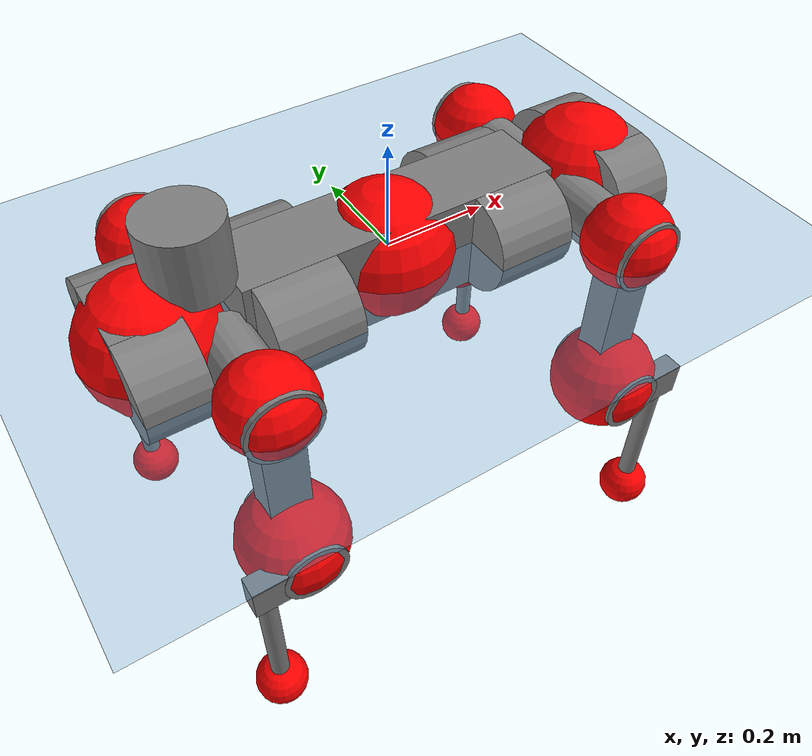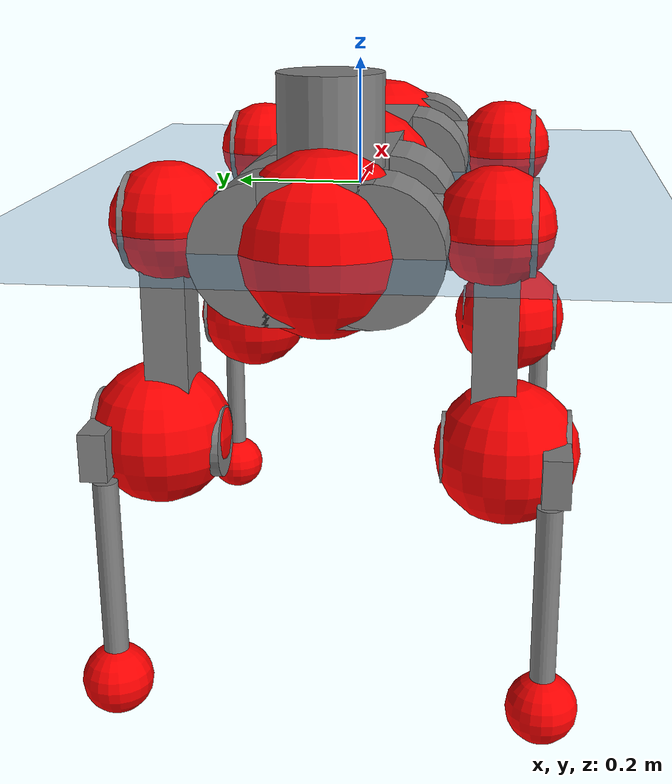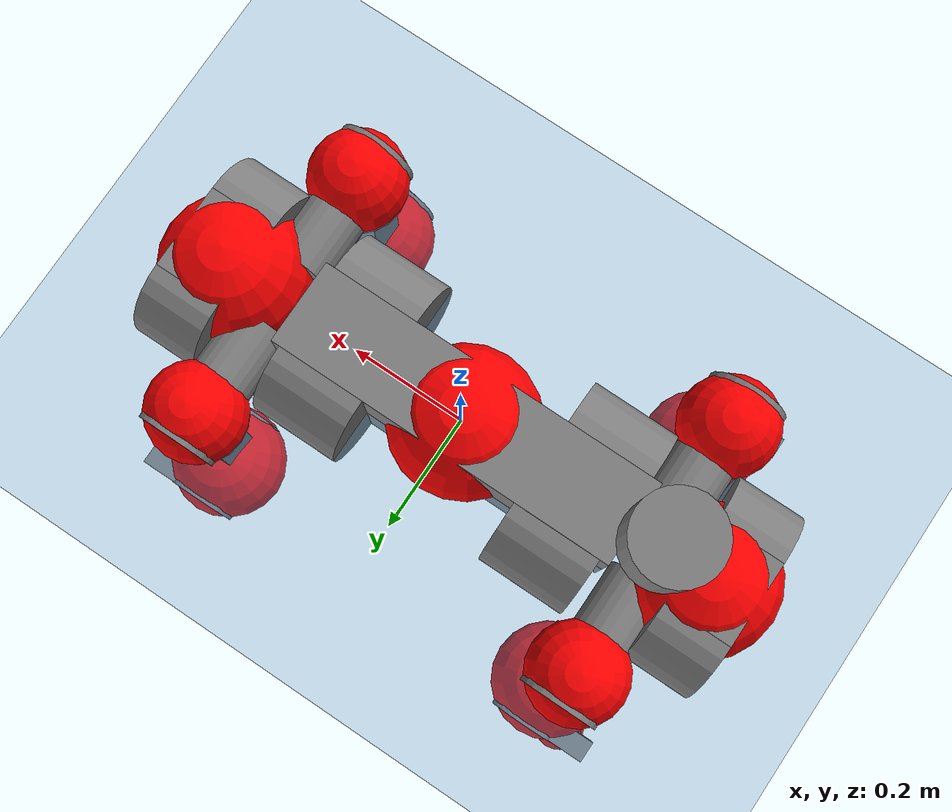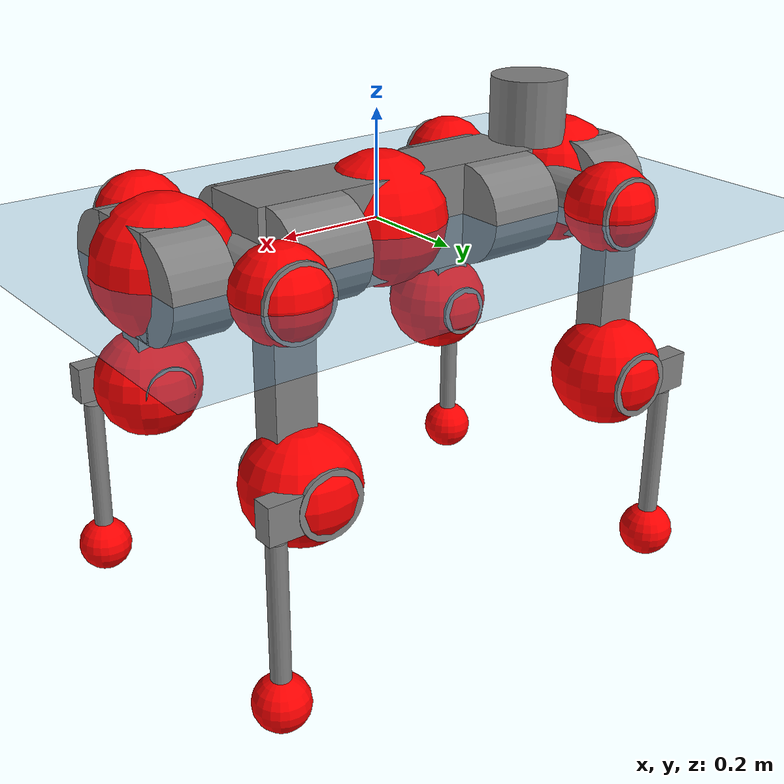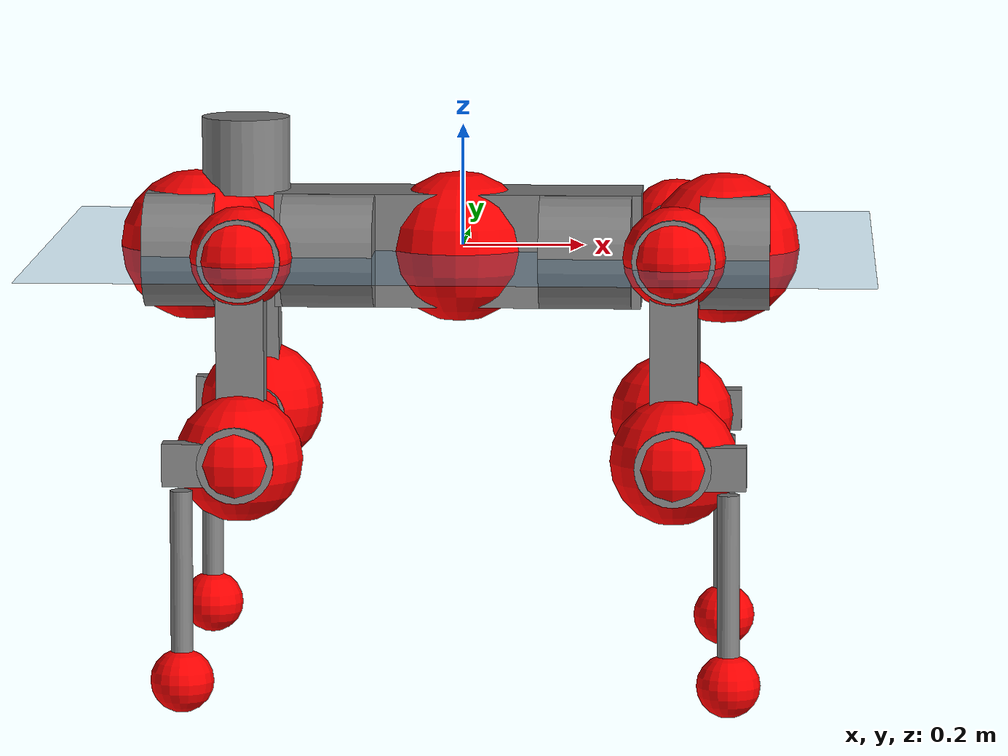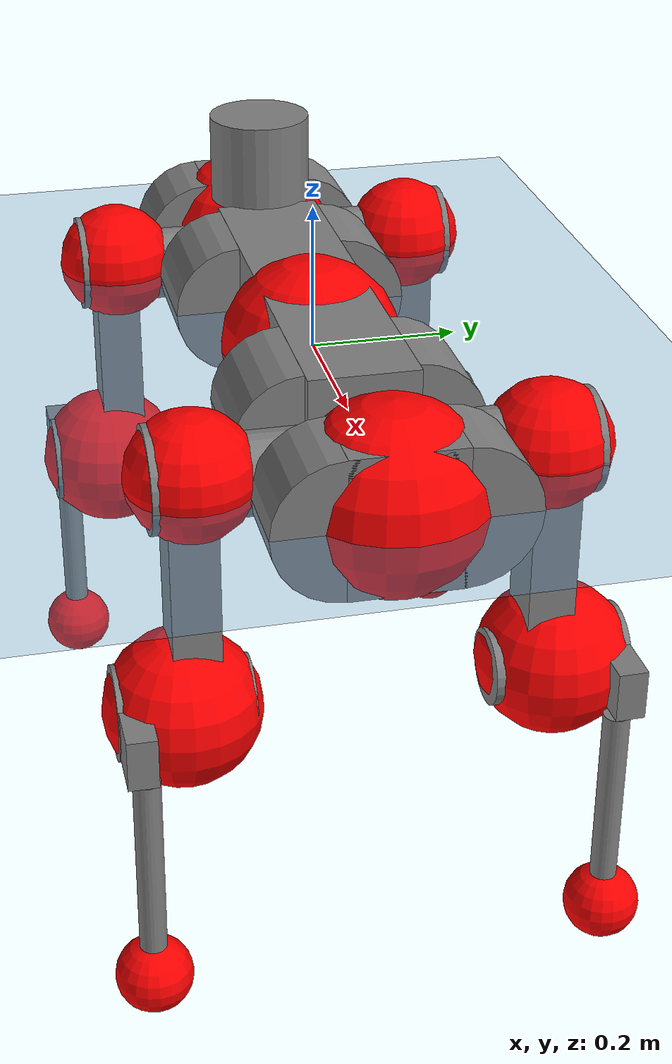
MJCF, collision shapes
<mujoco model="anymal_c">
  <compiler angle="radian" assetdir="assets" balanceinertia="true" inertiafromgeom="false"/>

  <option timestep="0.005" density="1.2" viscosity="2e-05"/>

  <size nkey="1"/>

  <visual>
    <quality shadowsize="8192"/>
    <map shadowclip="0.5"/>
  </visual>

  <default>
    <default class="/">
      <material specular="0" shininess="0.25"/>
      <geom contype="0" conaffinity="0" group="1" solref="-1000 -80"/>
      <site size="0.01 0.005 0.005" group="5"/>
      <general forcelimited="true" forcerange="-80 80" biastype="affine" gainprm="80" biasprm="0 -80 -2"/>
      <default class="anymal_c">
        <joint armature="0.01" damping="0.01" frictionloss="0.1"/>
        <default class="visual">
          <geom type="mesh" group="2"/>
          <default class="visual_zflip"/>
        </default>
        <default class="collision">
          <geom type="cylinder" group="3"/>
          <default class="foot">
            <geom size="0.03 0 0" type="sphere" condim="6" priority="1" friction="0.8 0.02 0.01" solimp="0.015 1 0.03"/>
          </default>
        </default>
      </default>
      <default class="reward_collision_sphere">
        <geom group="5" rgba="1 0 0 1"/>
      </default>
    </default>
  </default>

  <asset>
    <texture type="skybox" colorspace="auto" name="//unnamed_texture_0" builtin="gradient" rgb1="0.95 0.95 0.95" rgb2="0.95 0.95 0.95" width="100" height="600"/>
    <texture type="2d" colorspace="auto" name="texplane" builtin="checker" rgb1="0.345 0.575 0.748" rgb2="0.345 0.575 0.748" markrgb="1 1 1" width="512" height="512"/>
    <texture type="2d" colorspace="linear" name="base" file="base.png"/>
    <texture type="2d" colorspace="linear" name="top_shell" file="top_shell.png"/>
    <texture type="2d" colorspace="linear" name="bottom_shell" file="bottom_shell.png"/>
    <texture type="2d" colorspace="linear" name="remote" file="remote.png"/>
    <texture type="2d" colorspace="linear" name="hatch" file="hatch.png"/>
    <texture type="2d" colorspace="linear" name="handle" file="handle.png"/>
    <texture type="2d" colorspace="linear" name="face" file="face.png"/>
    <texture type="2d" colorspace="linear" name="battery" file="battery.png"/>
    <texture type="2d" colorspace="linear" name="lidar_cage" file="lidar_cage.png"/>
    <texture type="2d" colorspace="linear" name="depth_camera" file="depth_camera.png"/>
    <texture type="2d" colorspace="linear" name="wide_angle_camera" file="wide_angle_camera.png"/>
    <texture type="2d" colorspace="linear" name="lidar" file="lidar.png"/>
    <texture type="2d" colorspace="linear" name="drive" file="drive.png"/>
    <texture type="2d" colorspace="linear" name="hip_l" file="hip_l.png"/>
    <texture type="2d" colorspace="linear" name="shank_l" file="shank_l.png"/>
    <texture type="2d" colorspace="linear" name="foot" file="foot.png"/>
    <texture type="2d" colorspace="linear" name="thigh" file="thigh.png"/>
    <texture type="2d" colorspace="linear" name="shank_r" file="shank_r.png"/>
    <texture type="2d" colorspace="linear" name="hip_r" file="hip_r.png"/>
    <material name="MatPlane" class="/" texture="texplane" texuniform="true" texrepeat="2 2" specular="0.9" shininess="0.5"/>
    <material name="black_plastic" class="/" rgba="0.007 0.007 0.007 1"/>
    <material name="green" class="/" rgba="0.052 0.178 0.033 1"/>
    <material name="red" class="/" rgba="0.178 0.006 0.005 1"/>
    <material name="yellow" class="/" rgba="0.178 0.119 0.006 1"/>
    <material name="lwl" class="/" rgba="0.8 0.8 0.8 1"/>
    <material name="base" class="/" texture="base"/>
    <material name="top_shell" class="/" texture="top_shell"/>
    <material name="bottom_shell" class="/" texture="bottom_shell"/>
    <material name="hip_l" class="/" texture="hip_l"/>
    <material name="thigh" class="/" texture="thigh"/>
    <material name="shank_l" class="/" texture="shank_l"/>
    <material name="foot" class="/" texture="foot"/>
    <material name="hip_r" class="/" texture="hip_r"/>
    <material name="shank" class="/" texture="shank_r"/>
    <material name="hatch" class="/" texture="hatch"/>
    <material name="remote" class="/" texture="remote"/>
    <material name="handle" class="/" texture="handle"/>
    <material name="face" class="/" texture="face"/>
    <material name="depth_camera" class="/" texture="depth_camera"/>
    <material name="wide_angle_camera" class="/" texture="wide_angle_camera"/>
    <material name="battery" class="/" texture="battery"/>
    <material name="lidar_cage" class="/" texture="lidar_cage"/>
    <material name="lidar" class="/" texture="lidar"/>
    <material name="drive" class="/" texture="drive"/>
    <mesh name="base_0" class="/" file="base_0.obj"/>
    <mesh name="base_1" class="/" file="base_1.obj"/>
    <mesh name="base_2" class="/" file="base_2.obj"/>
    <mesh name="base_3" class="/" file="base_3.obj"/>
    <mesh name="base_4" class="/" file="base_4.obj"/>
    <mesh name="base_5" class="/" file="base_5.obj"/>
    <mesh name="top_shell" class="/" file="top_shell.obj"/>
    <mesh name="bottom_shell" class="/" file="bottom_shell.obj"/>
    <mesh name="remote" class="/" file="remote.obj"/>
    <mesh name="handle" class="/" file="handle.obj"/>
    <mesh name="face" class="/" file="face.obj"/>
    <mesh name="wide_angle_camera" class="/" file="wide_angle_camera.obj"/>
    <mesh name="depth_camera" class="/" file="depth_camera.obj"/>
    <mesh name="battery" class="/" file="battery.obj"/>
    <mesh name="lidar_cage" class="/" file="lidar_cage.obj"/>
    <mesh name="lidar" class="/" file="lidar.obj"/>
    <mesh name="drive" class="/" file="drive.obj"/>
    <mesh name="hip_l" class="/" file="hip_l.obj"/>
    <mesh name="thigh" class="/" file="thigh.obj"/>
    <mesh name="shank_l" class="/" file="shank_l.obj"/>
    <mesh name="foot" class="/" file="foot.obj"/>
    <mesh name="hip_r" class="/" file="hip_r.obj"/>
    <mesh name="hatch" class="/" file="hatch.obj"/>
    <mesh name="shank_r" class="/" file="shank_r.obj"/>
  </asset>

  <worldbody>
    <geom name="floor" class="/" size="100 100 0.125" type="plane" group="0" material="MatPlane"/>
    <light name="toplight_shadow" class="/" pos="0 0 5" dir="0.0990148 0.0990148 -0.990148" type="directional" ambient="0.04 0.04 0.04" diffuse="0.55 0.55 0.55" specular="0.12 0.12 0.12"/>
    <light name="toplight_fill" class="/" pos="0 0 5" dir="0.0990148 0.0990148 -0.990148" type="directional" castshadow="false" ambient="0.04 0.04 0.04" diffuse="0.3 0.3 0.3" specular="0.08 0.08 0.08"/>
    <body name="trunk" childclass="anymal_c" pos="-0.00688084 -0.000594273 -0.00201311" quat="1 -0.000385289 -0.00017968 -0.000287052">
      <inertial pos="0.00209856 -0.00288555 0.0553388" quat="0.508978 0.497066 0.494271 0.499563" mass="22.1934" diaginertia="0.471087 0.610712 0.404113"/>
      <joint name="//unnamed_joint_0" type="free" armature="0" damping="0" frictionloss="0"/>
      <geom name="//unnamed_geom_1" class="visual" material="green" mesh="base_0"/>
      <geom name="//unnamed_geom_2" class="visual" material="yellow" mesh="base_1"/>
      <geom name="//unnamed_geom_3" class="visual" material="red" mesh="base_2"/>
      <geom name="//unnamed_geom_4" class="visual" material="black_plastic" mesh="base_3"/>
      <geom name="//unnamed_geom_5" class="visual" material="lwl" mesh="base_4"/>
      <geom name="//unnamed_geom_6" class="visual" material="base" mesh="base_5"/>
      <geom name="trunk_1" class="collision" size="0.302407 0.0729949 0.0938506" type="box"/>
      <geom name="trunk_2" class="collision" size="0.0938506 0.0756018" pos="0.211561 0.071373 0" quat="0.707107 0 0.707107 0"/>
      <geom name="trunk_3" class="collision" size="0.0938506 0.0756018" pos="-0.211561 0.071373 0" quat="0.707107 0 0.707107 0"/>
      <geom name="trunk_4" class="collision" size="0.0938506 0.0756018" pos="0.211561 -0.071373 0" quat="0.707107 0 0.707107 0"/>
      <geom name="trunk_5" class="collision" size="0.0938506 0.0756018" pos="-0.211561 -0.071373 0" quat="0.707107 0 0.707107 0"/>
      <geom name="//unnamed_geom_12" class="visual" material="top_shell" mesh="top_shell"/>
      <geom name="//unnamed_geom_13" class="visual" material="bottom_shell" mesh="bottom_shell"/>
      <geom name="//unnamed_geom_14" class="visual" material="remote" mesh="remote"/>
      <geom name="//unnamed_geom_15" class="visual" material="handle" mesh="handle"/>
      <geom name="//unnamed_geom_16" class="visual" pos="0.403183 0 0" quat="1 0 0 0" material="face" mesh="face"/>
      <geom name="trunk_6" class="collision" size="0.0573531 0.0729949 0.0938506" pos="0.456681 0 0" type="box"/>
      <geom name="//unnamed_geom_18" class="collision" size="0.0938506 0.0573531" pos="0.456681 0.071373 0" quat="0.707107 0 0.707107 0"/>
      <geom name="//unnamed_geom_19" class="collision" size="0.0938506 0.0573531" pos="0.456681 -0.071373 0" quat="0.707107 0 0.707107 0"/>
      <geom name="//unnamed_geom_20" class="visual" pos="0.449052 0 -0.0344138" quat="0.965926 0 0.258819 0" material="depth_camera" mesh="depth_camera"/>
      <geom name="//unnamed_geom_21" class="visual" pos="0.498993 0 0.0170065" material="wide_angle_camera" mesh="wide_angle_camera"/>
      <geom name="//unnamed_geom_22" class="visual_zflip" pos="-0.403183 0 0" quat="0 0 0 1" material="face" mesh="face"/>
      <geom name="trunk_7" class="collision" size="0.0573531 0.0729949 0.0938506" pos="-0.456681 0 0" quat="0 0 0 1" type="box"/>
      <geom name="//unnamed_geom_24" class="collision" size="0.0938506 0.0573531" pos="-0.456681 -0.071373 0" quat="0 -0.707107 0 0.707107"/>
      <geom name="//unnamed_geom_25" class="collision" size="0.0938506 0.0573531" pos="-0.456681 0.071373 0" quat="0 -0.707107 0 0.707107"/>
      <geom name="//unnamed_geom_26" class="visual" pos="-0.449052 0 -0.0344138" quat="0 -0.258819 0 0.965926" material="depth_camera" mesh="depth_camera"/>
      <geom name="//unnamed_geom_27" class="visual_zflip" pos="-0.498993 0 0.0170065" quat="0 0 0 1" material="wide_angle_camera" mesh="wide_angle_camera"/>
      <geom name="//unnamed_geom_28" class="visual" material="battery" mesh="battery"/>
      <geom name="//unnamed_geom_29" class="visual" pos="0 0.0785821 0.0317606" quat="0.683013 -0.183013 0.183013 0.683013" material="depth_camera" mesh="depth_camera"/>
      <geom name="//unnamed_geom_30" class="visual" pos="0 -0.0785821 0.0317606" quat="0.683013 0.183013 0.183013 -0.683013" material="depth_camera" mesh="depth_camera"/>
      <geom name="//unnamed_geom_31" class="visual" pos="-0.354061 0 0.0834991" quat="1 0 0 0" material="lidar_cage" mesh="lidar_cage"/>
      <geom name="trunk_8" class="collision" size="0.0729949 0.062567" pos="-0.354061 0 0.151662"/>
      <geom name="//unnamed_geom_33" class="visual" pos="-0.354061 1.84328e-05 0.161545" quat="0.707107 0 0 -0.707107" material="lidar" mesh="lidar"/>
      <geom name="//unnamed_geom_34" class="visual" pos="0.291712 0.106081 -2.00839e-09" quat="0.258819 0.965926 0 0" material="drive" mesh="drive"/>
      <geom name="//unnamed_geom_35" class="visual" pos="0.291712 -0.106081 2.00839e-09" quat="0.258819 -0.965926 0 0" material="drive" mesh="drive"/>
      <geom name="//unnamed_geom_36" class="visual" pos="-0.291712 0.106081 2.00839e-09" quat="0 0 0.965926 -0.258819" material="drive" mesh="drive"/>
      <geom name="//unnamed_geom_37" class="visual" pos="-0.291712 -0.106081 -2.00839e-09" quat="0 0 -0.965926 -0.258819" material="drive" mesh="drive"/>
      <geom name="//unnamed_geom_38" class="visual" pos="0.112833 0 0.082931" quat="1 0 0 0" material="hatch" mesh="hatch"/>
      <geom name="//unnamed_geom_39" class="reward_collision_sphere" size="0.125134"/>
      <geom name="//unnamed_geom_40" class="reward_collision_sphere" size="0.125134" pos="0.437713 0 0"/>
      <geom name="//unnamed_geom_41" class="reward_collision_sphere" size="0.125134" pos="-0.437713 0 0"/>
      <site name="imu" pos="0.245484 -0.000951334 0.0943451" size="0.0104278"/>
      <camera name="track" pos="0 -2.03923 0" quat="0.707107 0.707107 0 0" mode="trackcom"/>
      <camera name="ego_camera" pos="0.437713 0 -0.0454417" quat="-0.5 -0.5 0.5 0.5"/>
      <body name="LF_HIP" pos="0.294837 0.1086 0.00239184" quat="0.256136 0.96664 -0.000361961 0.00117223">
        <inertial pos="0.0629088 -0.0147594 -0.00992134" quat="-0.129123 0.710088 -0.135276 0.678824" mass="3.03524" diaginertia="0.00490461 0.00559365 0.00594164"/>
        <joint name="LF_HAA" pos="0 0 0" axis="0.99883 0.0144484 0.046154" stiffness="0.0343898" range="-0.761507 0.495985" armature="0.0145922" damping="0.0181201" frictionloss="0.0954076"/>
        <geom name="//unnamed_geom_42" class="visual" pos="0 -0.000118144 1.94051e-05" quat="0.258819 -0.965926 0 0" material="hip_l" mesh="hip_l"/>
        <geom name="//unnamed_geom_43" class="visual" pos="0.0582645 -0.071259 -0.0420025" quat="0.183013 -0.683013 0.683013 0.183013" material="drive" mesh="drive"/>
        <geom name="//unnamed_geom_44" class="collision" size="0.0521392 0.0729949" pos="0.0582645 -0.0121944 -0.00784437" quat="-0.353553 -0.612372 0.612372 -0.353553"/>
        <body name="LF_THIGH" pos="0.061696 -0.0759387 -0.0448318" quat="0.182602 -0.682987 0.683035 0.183434">
          <inertial pos="0.0285265 -0.000276723 -0.270254" quat="0.993492 -0.00428525 -0.0834686 0.0773819" mass="3.56378" diaginertia="0.0268564 0.0328343 0.00777125"/>
          <joint name="LF_HFE" pos="0 0 0" axis="0.999951 -0.00992117 -9.9597e-05" stiffness="0.0156939" range="-3.16079 3.13308" armature="0.00711225" damping="0.0198874" frictionloss="0.118186"/>
          <geom name="//unnamed_geom_45" class="visual" pos="-0.000933481 -1.47095e-06 0" quat="0.707107 0 0 -0.707107" material="thigh" mesh="thigh"/>
          <geom name="//unnamed_geom_46" class="collision" size="0.067781 0.0417114" pos="0.0389079 0 0" quat="0.5 0.5 -0.5 -0.5"/>
          <geom name="//unnamed_geom_47" class="collision" size="0.0391044 0.0312835 0.14736" pos="0.0291809 0 -0.160539" quat="0.707107 0 0 -0.707107" type="box"/>
          <geom name="//unnamed_geom_48" class="visual" pos="0.0975614 0 -0.323772" quat="1 0 0 0" material="drive" mesh="drive"/>
          <geom name="//unnamed_geom_49" class="collision" size="0.0521392 0.0729949" pos="0.0294727 0 -0.323772" quat="0.707107 0 0.707107 0"/>
          <geom name="//unnamed_geom_50" class="reward_collision_sphere" size="0.0834227" pos="0.0243174 0 0"/>
          <body name="LF_SHANK" pos="0.0998458 0.00915727 -0.324728" quat="0.999998 0.000258331 0.000238881 0.00214479">
            <inertial pos="0.00374416 -0.0635504 -0.0913659" quat="0.989015 -0.144946 -0.024364 -0.0156795" mass="0.617962" diaginertia="0.00903854 0.00982357 0.00219253"/>
            <joint name="LF_KFE" pos="0 0 0" axis="1 -0.00020546 0.000455888" stiffness="0.00252609" range="-3.12713 3.10346" armature="0.010498" damping="0.0282608" frictionloss="0.114854"/>
            <geom name="//unnamed_geom_51" class="visual" pos="-0.000304388 -0.00162301 0" quat="0.707107 0 0 -0.707107" material="shank_l" mesh="shank_l"/>
            <geom name="LF_kfe_act" class="collision" size="0.062567 0.0208557" pos="0.0194539 0 0" quat="0.5 0.5 -0.5 -0.5"/>
            <geom name="//unnamed_geom_53" class="collision" size="0.059959 0.035194 0.0198129" pos="0.0194539 -0.0586268 0" quat="0.5 0.5 -0.5 -0.5" type="box"/>
            <geom name="//unnamed_geom_54" class="visual" pos="0.0126938 -0.0901981 -0.383948" quat="0.382683 0 0 -0.92388" material="foot" mesh="foot"/>
            <geom name="LF_calf" class="collision" size="0.0182487 0.147295" pos="0.0126937 -0.0896751 -0.191974" quat="0.707107 0 0 -0.707107"/>
            <geom name="LF_foot" class="foot" size="0.0266907" pos="0.0126937 -0.0896751 -0.358387" quat="0.707107 0 0 -0.707107"/>
            <geom name="//unnamed_geom_57" class="reward_collision_sphere" size="0.104278" pos="-0.0486348 0 0"/>
            <geom name="//unnamed_geom_58" class="reward_collision_sphere" size="0.0521392" pos="0.0126937 -0.0896751 -0.358387"/>
            <site name="LF_foot" class="foot" pos="0.0126937 -0.0896751 -0.358387" quat="0.707107 0 0 -0.707107" size="0.0104278"/>
          </body>
        </body>
      </body>
      <body name="RF_HIP" pos="0.300696 -0.114714 0.00562502" quat="0.25896 -0.965887 0.000594154 -0.00137998">
        <inertial pos="0.0466099 0.0164866 -0.00202216" quat="0.146082 0.670585 0.124702 0.716537" mass="2.90002" diaginertia="0.00447444 0.00509622 0.00562781"/>
        <joint name="RF_HAA" pos="0 0 0" axis="0.999452 -0.00846007 -0.0320153" range="-0.338012 0.760551" armature="0.010578" damping="0.0207775" frictionloss="0.135348"/>
        <geom name="//unnamed_geom_59" class="visual" pos="0 0.000118143 1.94051e-05" quat="0.258819 0.965926 0 0" material="hip_r" mesh="hip_r"/>
        <geom name="//unnamed_geom_60" class="visual" pos="0.0582645 0.071259 -0.0420025" quat="0.183013 0.683013 0.683013 -0.183013" material="drive" mesh="drive"/>
        <geom name="//unnamed_geom_61" class="collision" size="0.0521392 0.0729949" pos="0.0582645 0.0121944 -0.00784437" quat="-0.353553 0.612372 0.612372 0.353553"/>
        <body name="RF_THIGH" pos="0.0592095 0.0739449 -0.0504717" quat="0.183017 0.683015 0.683004 -0.183034">
          <inertial pos="0.0319653 -0.00970577 -0.278378" quat="0.993117 -0.0049681 -0.0784195 0.0868575" mass="3.4752" diaginertia="0.026022 0.0336883 0.00792885"/>
          <joint name="RF_HFE" pos="0 0 0" axis="0.999834 0.0165695 0.00758352" range="-3.18211 3.10307" armature="0.010081" damping="0.0307412" frictionloss="0.112053"/>
          <geom name="//unnamed_geom_62" class="visual" pos="-0.000933481 -1.47095e-06 0" quat="0.707107 0 0 -0.707107" material="thigh" mesh="thigh"/>
          <geom name="//unnamed_geom_63" class="collision" size="0.067781 0.0417114" pos="0.0389079 0 0" quat="0.5 0.5 0.5 0.5"/>
          <geom name="//unnamed_geom_64" class="collision" size="0.0391044 0.0312835 0.14736" pos="0.0291809 0 -0.160539" quat="0.707107 0 0 0.707107" type="box"/>
          <geom name="//unnamed_geom_65" class="visual" pos="0.0975614 0 -0.323772" quat="1 0 0 0" material="drive" mesh="drive"/>
          <geom name="//unnamed_geom_66" class="collision" size="0.0521392 0.0729949" pos="0.0294727 0 -0.323772" quat="0.707107 0 0.707107 0"/>
          <geom name="//unnamed_geom_67" class="reward_collision_sphere" size="0.0834227" pos="0.0243174 0 0"/>
          <body name="RF_SHANK" pos="0.0938007 0.000686372 -0.32994" quat="0.99999 0.00132123 -0.00400711 -0.00109852">
            <inertial pos="-0.0045477 0.0660252 -0.0975571" quat="0.992369 0.118875 0.000204669 0.0327372" mass="0.70113" diaginertia="0.00843888 0.00916561 0.00184421"/>
            <joint name="RF_KFE" pos="0 0 0" axis="0.999999 -0.00112404 0.000483295" range="-2.98221 3.09755" armature="0.011502" damping="0" frictionloss="0.0695741"/>
            <geom name="//unnamed_geom_68" class="visual" pos="-0.000304386 0.00162301 0" quat="0.707107 0 0 0.707107" material="shank" mesh="shank_r"/>
            <geom name="RF_kfe_act" class="collision" size="0.062567 0.0208557" pos="0.0194539 0 0" quat="0.5 0.5 0.5 0.5"/>
            <geom name="//unnamed_geom_70" class="collision" size="0.059959 0.035194 0.0198129" pos="0.0194539 0.0586268 0" quat="0.5 0.5 0.5 0.5" type="box"/>
            <geom name="//unnamed_geom_71" class="visual" pos="0.0126936 0.0901981 -0.383948" quat="0.382683 0 0 0.92388" material="foot" mesh="foot"/>
            <geom name="RF_calf" class="collision" size="0.0182487 0.147295" pos="0.0126937 0.0896751 -0.191974" quat="0.707107 0 0 0.707107"/>
            <geom name="RF_foot" class="foot" size="0.0303817" pos="0.0126937 0.0896751 -0.358387" quat="0.707107 0 0 0.707107"/>
            <geom name="//unnamed_geom_74" class="reward_collision_sphere" size="0.104278" pos="-0.0486348 0 0"/>
            <geom name="//unnamed_geom_75" class="reward_collision_sphere" size="0.0521392" pos="0.0126937 0.0896751 -0.358387"/>
            <site name="RF_foot" class="foot" pos="0.0126937 0.0896751 -0.358387" quat="0.707107 0 0 0.707107" size="0.0104278"/>
          </body>
        </body>
      </body>
      <body name="LH_HIP" pos="-0.301761 0.112678 0.00156341" quat="-1.35787e-05 4.03159e-05 0.965927 -0.258816">
        <inertial pos="0.047215 0.0251195 -0.00949146" quat="0.147249 0.67873 0.0980618 0.71276" mass="3.20853" diaginertia="0.00503651 0.00536608 0.006692"/>
        <joint name="LH_HAA" pos="0 0 0" axis="0.999983 -0.00062462 0.0058105" range="-0.572124 0.710133" armature="0.0106425" damping="0.00513773" frictionloss="0.104762"/>
        <geom name="//unnamed_geom_76" class="visual" pos="0 0.000118143 1.94051e-05" quat="-0.258819 -0.965926 0 0" material="hip_r" mesh="hip_r"/>
        <geom name="//unnamed_geom_77" class="visual" pos="0.0582645 0.071259 -0.0420025" quat="0.183013 0.683013 0.683013 -0.183013" material="drive" mesh="drive"/>
        <geom name="//unnamed_geom_78" class="collision" size="0.0521392 0.0729949" pos="0.0582645 0.0121944 -0.00784437" quat="-0.353553 0.612372 0.612372 0.353553"/>
        <body name="LH_THIGH" pos="0.0556623 0.0730116 -0.0509482" quat="0.183037 0.683081 0.682931 -0.183037">
          <inertial pos="0.0312939 -0.00829697 -0.276903" quat="0.994597 -0.00812569 -0.0555919 0.0872947" mass="3.34297" diaginertia="0.0260856 0.0318838 0.00834157"/>
          <joint name="LH_HFE" pos="0 0 0" axis="0.99933 -0.00797983 0.0357183" stiffness="0.021941" range="-3.22152 3.07309" armature="0.00652429" damping="0.00838681" frictionloss="0.0727487"/>
          <geom name="//unnamed_geom_79" class="visual" pos="-0.000933481 -1.47095e-06 0" quat="0.707107 0 0 -0.707107" material="thigh" mesh="thigh"/>
          <geom name="//unnamed_geom_80" class="collision" size="0.067781 0.0417114" pos="0.0389079 0 0" quat="0.5 0.5 -0.5 -0.5"/>
          <geom name="//unnamed_geom_81" class="collision" size="0.0391044 0.0312835 0.14736" pos="0.0291809 0 -0.160539" quat="0.707107 0 0 -0.707107" type="box"/>
          <geom name="//unnamed_geom_82" class="visual" pos="0.0975614 0 -0.323772" quat="1 0 0 0" material="drive" mesh="drive"/>
          <geom name="//unnamed_geom_83" class="collision" size="0.0521392 0.0729949" pos="0.0294727 0 -0.323772" quat="0.707107 0 0.707107 0"/>
          <geom name="//unnamed_geom_84" class="reward_collision_sphere" size="0.0834227" pos="0.0243174 0 0"/>
          <body name="LH_SHANK" pos="0.100828 -0.00598317 -0.314549" quat="0.999989 0.00273525 0.00340746 0.00138907">
            <inertial pos="0.00737281 0.0620033 -0.101605" quat="0.992036 0.123262 0.0078388 0.0247012" mass="0.732161" diaginertia="0.00873541 0.0104079 0.00217037"/>
            <joint name="LH_KFE" pos="0 0 0" axis="0.999994 -0.00217293 0.00268427" stiffness="0.0063683" range="-3.12268 3.20783" armature="0.0109288" damping="0.0145627" frictionloss="0.131368"/>
            <geom name="//unnamed_geom_85" class="visual" pos="-0.000304386 0.00162301 0" quat="-0.707107 0 0 -0.707107" material="shank" mesh="shank_r"/>
            <geom name="LH_kfe_act" class="collision" size="0.062567 0.0208557" pos="0.0194539 0 0" quat="0.5 0.5 -0.5 -0.5"/>
            <geom name="//unnamed_geom_87" class="collision" size="0.059959 0.035194 0.0198129" pos="0.0194539 0.0586268 0" quat="0.5 0.5 -0.5 -0.5" type="box"/>
            <geom name="//unnamed_geom_88" class="visual" pos="0.0126936 0.0901981 -0.383948" quat="-0.382683 0 0 -0.92388" material="foot" mesh="foot"/>
            <geom name="LH_calf" class="collision" size="0.0182487 0.147295" pos="0.0126937 0.0896751 -0.191974" quat="0.707107 0 0 -0.707107"/>
            <geom name="LH_foot" class="foot" size="0.0378173" pos="0.0126937 0.0896751 -0.358387" quat="0.707107 0 0 -0.707107"/>
            <geom name="//unnamed_geom_91" class="reward_collision_sphere" size="0.104278" pos="-0.0486348 0 0"/>
            <geom name="//unnamed_geom_92" class="reward_collision_sphere" size="0.0521392" pos="0.0126937 0.0896751 -0.358387"/>
            <site name="LH_foot" class="foot" pos="0.0126937 0.0896751 -0.358387" quat="0.707107 0 0 -0.707107" size="0.0104278"/>
          </body>
        </body>
      </body>
      <body name="RH_HIP" pos="-0.283646 -0.106872 -0.00165705" quat="0.000120717 8.86477e-05 -0.965898 -0.258924">
        <inertial pos="0.0506023 -0.0177946 -0.0100098" quat="-0.167608 0.70178 -0.129174 0.68024" mass="3.07434" diaginertia="0.00483054 0.00507341 0.00585533"/>
        <joint name="RH_HAA" pos="0 0 0" axis="0.999079 0.040988 -0.012702" range="-0.737727 0.493801" armature="0.0107334" damping="0.000669581" frictionloss="0.111329"/>
        <geom name="//unnamed_geom_93" class="visual" pos="0 -0.000118144 1.94051e-05" quat="-0.258819 0.965926 0 0" material="hip_l" mesh="hip_l"/>
        <geom name="//unnamed_geom_94" class="visual" pos="0.0582645 -0.071259 -0.0420025" quat="-0.183013 0.683013 -0.683013 -0.183013" material="drive" mesh="drive"/>
        <geom name="//unnamed_geom_95" class="collision" size="0.0521392 0.0729949" pos="0.0582645 -0.0121944 -0.00784437" quat="0.353553 0.612372 -0.612372 0.353553"/>
        <body name="RH_THIGH" pos="0.0606011 -0.074556 -0.0545055" quat="-0.183053 0.683065 -0.682979 -0.182903">
          <inertial pos="0.0309895 -0.00231333 -0.278694" quat="0.994031 -0.0475052 -0.063473 0.0749459" mass="3.47604" diaginertia="0.026034 0.0308667 0.00705798"/>
          <joint name="RH_HFE" pos="0 0 0" axis="0.99999 0.0025076 0.00358985" stiffness="0.0218754" range="-3.11927 3.13762" armature="0.00759386" damping="0.0399679" frictionloss="0.113799"/>
          <geom name="//unnamed_geom_96" class="visual" pos="-0.000933481 -1.47095e-06 0" quat="0.707107 0 0 -0.707107" material="thigh" mesh="thigh"/>
          <geom name="//unnamed_geom_97" class="collision" size="0.067781 0.0417114" pos="0.0389079 0 0" quat="0.5 0.5 0.5 0.5"/>
          <geom name="//unnamed_geom_98" class="collision" size="0.0391044 0.0312835 0.14736" pos="0.0291809 0 -0.160539" quat="0.707107 0 0 0.707107" type="box"/>
          <geom name="//unnamed_geom_99" class="visual" pos="0.0975614 0 -0.323772" quat="1 0 0 0" material="drive" mesh="drive"/>
          <geom name="//unnamed_geom_100" class="collision" size="0.0521392 0.0729949" pos="0.0294727 0 -0.323772" quat="0.707107 0 0.707107 0"/>
          <geom name="//unnamed_geom_101" class="reward_collision_sphere" size="0.0834227" pos="0.0243174 0 0"/>
          <body name="RH_SHANK" pos="0.0987408 -0.00199577 -0.3256" quat="1 1.03741e-05 -0.000202061 -0.000431099">
            <inertial pos="0.0120405 -0.0536986 -0.0995526" quat="0.993551 -0.111284 -0.00791097 -0.020222" mass="0.600931" diaginertia="0.00903197 0.00913181 0.00205403"/>
            <joint name="RH_KFE" pos="0 0 0" axis="0.999995 0.00306732 0.000668743" range="-3.13088 2.98075" armature="0.0100967" damping="0.00957676" frictionloss="0.061596"/>
            <geom name="//unnamed_geom_102" class="visual" pos="-0.000304388 -0.00162301 0" quat="0.707107 0 0 -0.707107" material="shank_l" mesh="shank_l"/>
            <geom name="RH_kfe_act" class="collision" size="0.062567 0.0208557" pos="0.0194539 0 0" quat="0.5 0.5 0.5 0.5"/>
            <geom name="//unnamed_geom_104" class="collision" size="0.059959 0.035194 0.0198129" pos="0.0194539 -0.0586268 0" quat="0.5 0.5 0.5 0.5" type="box"/>
            <geom name="//unnamed_geom_105" class="visual" pos="0.0126938 -0.0901981 -0.383948" quat="0.382683 0 0 -0.92388" material="foot" mesh="foot"/>
            <geom name="RH_calf" class="collision" size="0.0182487 0.147295" pos="0.0126937 -0.0896751 -0.191974" quat="0.707107 0 0 0.707107"/>
            <geom name="RH_foot" class="foot" size="0.0222318" pos="0.0126937 -0.0896751 -0.358387" quat="0.707107 0 0 0.707107"/>
            <geom name="//unnamed_geom_108" class="reward_collision_sphere" size="0.104278" pos="-0.0486348 0 0"/>
            <geom name="//unnamed_geom_109" class="reward_collision_sphere" size="0.0521392" pos="0.0126937 -0.0896751 -0.358387"/>
            <site name="RH_foot" class="foot" pos="0.0126937 -0.0896751 -0.358387" quat="0.707107 0 0 0.707107" size="0.0104278"/>
          </body>
        </body>
      </body>
    </body>
  </worldbody>

  <contact>
    <pair class="/" geom1="floor" geom2="LF_foot" name="//unnamed_contact_0"/>
    <pair class="/" geom1="floor" geom2="RF_foot" name="//unnamed_contact_1"/>
    <pair class="/" geom1="floor" geom2="LH_foot" name="//unnamed_contact_2"/>
    <pair class="/" geom1="floor" geom2="RH_foot" name="//unnamed_contact_3"/>
  </contact>

  <actuator>
    <general name="LF_HAA" class="/" joint="LF_HAA" forcerange="-81.6995 81.6995" gainprm="82.8406" biasprm="0 -82.8406 -2.11821"/>
    <general name="LF_HFE" class="/" joint="LF_HFE" forcerange="-102.215 102.215" gainprm="82.8406" biasprm="0 -82.8406 -2.11821"/>
    <general name="LF_KFE" class="/" joint="LF_KFE" forcerange="-80.3082 80.3082" gainprm="82.8406" biasprm="0 -82.8406 -2.11821"/>
    <general name="RF_HAA" class="/" joint="RF_HAA" forcerange="-84.922 84.922" gainprm="82.8406" biasprm="0 -82.8406 -2.11821"/>
    <general name="RF_HFE" class="/" joint="RF_HFE" forcerange="-91.6851 91.6851" gainprm="82.8406" biasprm="0 -82.8406 -2.11821"/>
    <general name="RF_KFE" class="/" joint="RF_KFE" forcerange="-74.4244 74.4244" gainprm="82.8406" biasprm="0 -82.8406 -2.11821"/>
    <general name="LH_HAA" class="/" joint="LH_HAA" forcerange="-82.7138 82.7138" gainprm="82.8406" biasprm="0 -82.8406 -2.11821"/>
    <general name="LH_HFE" class="/" joint="LH_HFE" forcerange="-73.3881 73.3881" gainprm="82.8406" biasprm="0 -82.8406 -2.11821"/>
    <general name="LH_KFE" class="/" joint="LH_KFE" forcerange="-91.416 91.416" gainprm="82.8406" biasprm="0 -82.8406 -2.11821"/>
    <general name="RH_HAA" class="/" joint="RH_HAA" forcerange="-79.1469 79.1469" gainprm="82.8406" biasprm="0 -82.8406 -2.11821"/>
    <general name="RH_HFE" class="/" joint="RH_HFE" forcerange="-84.9337 84.9337" gainprm="82.8406" biasprm="0 -82.8406 -2.11821"/>
    <general name="RH_KFE" class="/" joint="RH_KFE" forcerange="-112.205 112.205" gainprm="82.8406" biasprm="0 -82.8406 -2.11821"/>
  </actuator>

  <sensor>
    <gyro site="imu" name="imu_angular_velocity"/>
    <velocimeter site="imu" name="imu_linear_velocity"/>
    <framelinvel objtype="site" objname="LF_foot" name="LF_foot_global_linear_velocity"/>
    <framelinvel objtype="site" objname="RF_foot" name="RF_foot_global_linear_velocity"/>
    <framelinvel objtype="site" objname="LH_foot" name="LH_foot_global_linear_velocity"/>
    <framelinvel objtype="site" objname="RH_foot" name="RH_foot_global_linear_velocity"/>
  </sensor>

  <keyframe>
    <key name="home" qpos="0 0 0.55 1 0 0 0 0 0.4 -0.8 0 -0.4 0.8 0 -0.4 0.8 0 0.4 -0.8"/>
  </keyframe>
</mujoco>
